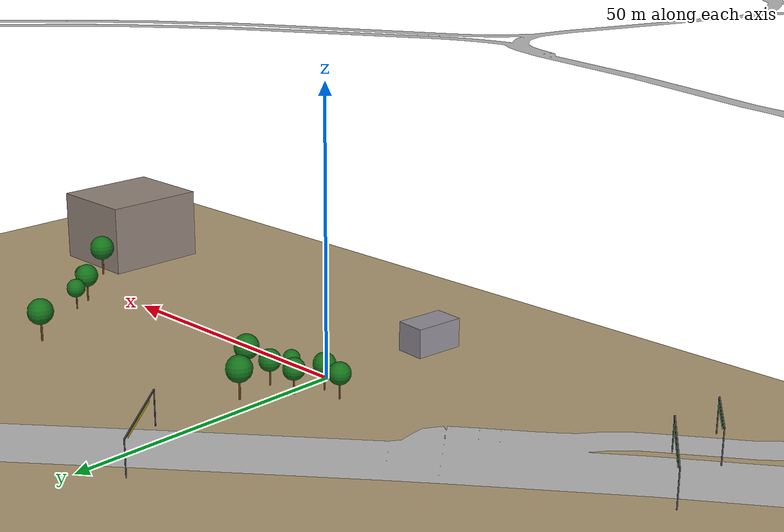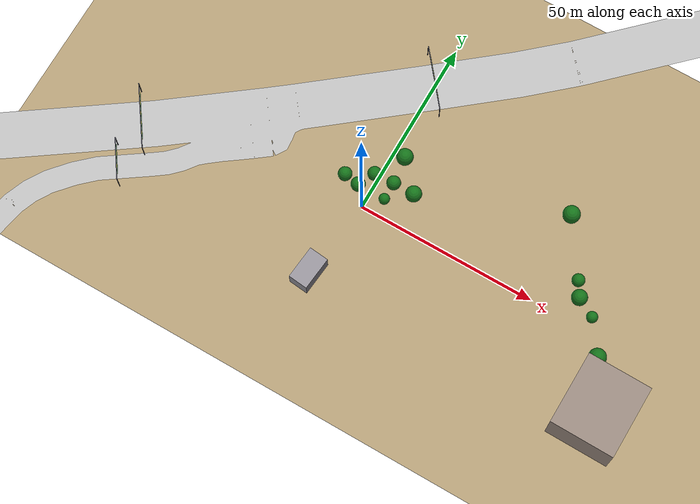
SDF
<sdf version="1.9">
 <world name="crossroad_world">
  <model name="ground_plane">
   <static>true</static>
   <pose>0 0 -0.05 0 0 0</pose>
   <link name="link">
    <collision name="collision">
     <geometry><plane><normal>0 0 1</normal><size>10000 10000</size></plane></geometry>
    </collision>
    <visual name="visual">
     <geometry><plane><normal>0 0 1</normal><size>15000 15000</size></plane></geometry>
     <material><ambient>0.68 0.60 0.45 1</ambient><diffuse>0.68 0.60 0.45 1</diffuse></material>
    </visual>
   </link>
  </model>
  <include><uri>model://crossroad_road</uri><pose>0 0 0.2 0 0 0</pose></include>
  <model name="gantry_33">
   <static>true</static>
   <pose>-60.702 -22.073 0 0 0 2.175</pose>
   <link name="link">
    <visual name="post_l">
     <pose>-5.700 0 2.925 0 0 0</pose>
     <geometry><cylinder><radius>0.1</radius><length>5.85</length></cylinder></geometry>
     <material><ambient>0.30 0.30 0.35 1</ambient><diffuse>0.30 0.30 0.35 1</diffuse></material>
    </visual>
    <visual name="post_r">
     <pose>5.700 0 2.925 0 0 0</pose>
     <geometry><cylinder><radius>0.1</radius><length>5.85</length></cylinder></geometry>
     <material><ambient>0.30 0.30 0.35 1</ambient><diffuse>0.30 0.30 0.35 1</diffuse></material>
    </visual>
    <visual name="beam">
     <pose>0 0 6.000 0 0 0</pose>
     <geometry><box><size>11.400 0.22 0.22</size></box></geometry>
     <material><ambient>0.30 0.30 0.35 1</ambient><diffuse>0.30 0.30 0.35 1</diffuse></material>
    </visual>
    <visual name="sign_border">
     <pose>0 -0.14 5.450 0 0 0</pose>
     <geometry><box><size>8.288 0.04 0.92</size></box></geometry>
     <material><ambient>0.90 0.85 0.10 1</ambient><diffuse>0.90 0.85 0.10 1</diffuse></material>
    </visual>
    <visual name="sign_panel">
     <pose>0 -0.15 5.450 0 0 0</pose>
     <geometry><box><size>8.208 0.05 0.86</size></box></geometry>
     <material><ambient>0.05 0.38 0.10 1</ambient><diffuse>0.05 0.38 0.10 1</diffuse></material>
    </visual>
    <collision name="col_post_l">
     <pose>-5.700 0 2.925 0 0 0</pose>
     <geometry><cylinder><radius>0.1</radius><length>5.85</length></cylinder></geometry>
    </collision>
    <collision name="col_post_r">
     <pose>5.700 0 2.925 0 0 0</pose>
     <geometry><cylinder><radius>0.1</radius><length>5.85</length></cylinder></geometry>
    </collision>
    <collision name="col_beam">
     <pose>0 0 6.000 0 0 0</pose>
     <geometry><box><size>11.400 0.22 0.22</size></box></geometry>
    </collision>
   </link>
  </model>
  <model name="gantry_67">
   <static>true</static>
   <pose>-61.518 -8.916 0 0 0 2.180</pose>
   <link name="link">
    <visual name="post_l">
     <pose>-8.900 0 2.925 0 0 0</pose>
     <geometry><cylinder><radius>0.1</radius><length>5.85</length></cylinder></geometry>
     <material><ambient>0.30 0.30 0.35 1</ambient><diffuse>0.30 0.30 0.35 1</diffuse></material>
    </visual>
    <visual name="post_r">
     <pose>8.900 0 2.925 0 0 0</pose>
     <geometry><cylinder><radius>0.1</radius><length>5.85</length></cylinder></geometry>
     <material><ambient>0.30 0.30 0.35 1</ambient><diffuse>0.30 0.30 0.35 1</diffuse></material>
    </visual>
    <visual name="beam">
     <pose>0 0 6.000 0 0 0</pose>
     <geometry><box><size>17.800 0.22 0.22</size></box></geometry>
     <material><ambient>0.30 0.30 0.35 1</ambient><diffuse>0.30 0.30 0.35 1</diffuse></material>
    </visual>
    <visual name="sign_border">
     <pose>0 -0.14 5.450 0 0 0</pose>
     <geometry><box><size>12.896 0.04 0.92</size></box></geometry>
     <material><ambient>0.90 0.85 0.10 1</ambient><diffuse>0.90 0.85 0.10 1</diffuse></material>
    </visual>
    <visual name="sign_panel">
     <pose>0 -0.15 5.450 0 0 0</pose>
     <geometry><box><size>12.816 0.05 0.86</size></box></geometry>
     <material><ambient>0.05 0.38 0.10 1</ambient><diffuse>0.05 0.38 0.10 1</diffuse></material>
    </visual>
    <collision name="col_post_l">
     <pose>-8.900 0 2.925 0 0 0</pose>
     <geometry><cylinder><radius>0.1</radius><length>5.85</length></cylinder></geometry>
    </collision>
    <collision name="col_post_r">
     <pose>8.900 0 2.925 0 0 0</pose>
     <geometry><cylinder><radius>0.1</radius><length>5.85</length></cylinder></geometry>
    </collision>
    <collision name="col_beam">
     <pose>0 0 6.000 0 0 0</pose>
     <geometry><box><size>17.800 0.22 0.22</size></box></geometry>
    </collision>
   </link>
  </model>
  <model name="gantry_69">
   <static>true</static>
   <pose>-0.530 38.634 0 0 0 2.255</pose>
   <link name="link">
    <visual name="post_l">
     <pose>-8.900 0 2.925 0 0 0</pose>
     <geometry><cylinder><radius>0.1</radius><length>5.85</length></cylinder></geometry>
     <material><ambient>0.30 0.30 0.35 1</ambient><diffuse>0.30 0.30 0.35 1</diffuse></material>
    </visual>
    <visual name="post_r">
     <pose>8.900 0 2.925 0 0 0</pose>
     <geometry><cylinder><radius>0.1</radius><length>5.85</length></cylinder></geometry>
     <material><ambient>0.30 0.30 0.35 1</ambient><diffuse>0.30 0.30 0.35 1</diffuse></material>
    </visual>
    <visual name="beam">
     <pose>0 0 6.000 0 0 0</pose>
     <geometry><box><size>17.800 0.22 0.22</size></box></geometry>
     <material><ambient>0.30 0.30 0.35 1</ambient><diffuse>0.30 0.30 0.35 1</diffuse></material>
    </visual>
    <visual name="sign_border">
     <pose>0 -0.14 5.450 0 0 0</pose>
     <geometry><box><size>12.896 0.04 0.92</size></box></geometry>
     <material><ambient>0.90 0.85 0.10 1</ambient><diffuse>0.90 0.85 0.10 1</diffuse></material>
    </visual>
    <visual name="sign_panel">
     <pose>0 -0.15 5.450 0 0 0</pose>
     <geometry><box><size>12.816 0.05 0.86</size></box></geometry>
     <material><ambient>0.05 0.38 0.10 1</ambient><diffuse>0.05 0.38 0.10 1</diffuse></material>
    </visual>
    <collision name="col_post_l">
     <pose>-8.900 0 2.925 0 0 0</pose>
     <geometry><cylinder><radius>0.1</radius><length>5.85</length></cylinder></geometry>
    </collision>
    <collision name="col_post_r">
     <pose>8.900 0 2.925 0 0 0</pose>
     <geometry><cylinder><radius>0.1</radius><length>5.85</length></cylinder></geometry>
    </collision>
    <collision name="col_beam">
     <pose>0 0 6.000 0 0 0</pose>
     <geometry><box><size>17.800 0.22 0.22</size></box></geometry>
    </collision>
   </link>
  </model>
  <model name="tree_173">
   <static>true</static>
   <pose>48.376 23.791 0 0 0 0</pose>
   <link name="link">
    <visual name="trunk">
     <pose>0 0 1.988 0 0 0</pose>
     <geometry><cylinder><radius>0.174</radius><length>3.975</length></cylinder></geometry>
     <material><ambient>0.38 0.22 0.08 1</ambient><diffuse>0.38 0.22 0.08 1</diffuse></material>
    </visual>
    <visual name="canopy">
     <pose>0 0 5.510 0 0 0</pose>
     <geometry><sphere><radius>2.360</radius></sphere></geometry>
     <material><ambient>0.08 0.44 0.10 1</ambient><diffuse>0.08 0.44 0.10 1</diffuse></material>
    </visual>
    <collision name="col">
     <pose>0 0 1.988 0 0 0</pose>
     <geometry><cylinder><radius>0.174</radius><length>3.975</length></cylinder></geometry>
    </collision>
   </link>
  </model>
  <model name="tree_174">
   <static>true</static>
   <pose>60.498 5.546 0 0 0 0</pose>
   <link name="link">
    <visual name="trunk">
     <pose>0 0 1.819 0 0 0</pose>
     <geometry><cylinder><radius>0.159</radius><length>3.638</length></cylinder></geometry>
     <material><ambient>0.38 0.22 0.08 1</ambient><diffuse>0.38 0.22 0.08 1</diffuse></material>
    </visual>
    <visual name="canopy">
     <pose>0 0 5.042 0 0 0</pose>
     <geometry><sphere><radius>2.160</radius></sphere></geometry>
     <material><ambient>0.08 0.44 0.10 1</ambient><diffuse>0.08 0.44 0.10 1</diffuse></material>
    </visual>
    <collision name="col">
     <pose>0 0 1.819 0 0 0</pose>
     <geometry><cylinder><radius>0.159</radius><length>3.638</length></cylinder></geometry>
    </collision>
   </link>
  </model>
  <model name="tree_175">
   <static>true</static>
   <pose>58.107 9.685 0 0 0 0</pose>
   <link name="link">
    <visual name="trunk">
     <pose>0 0 1.474 0 0 0</pose>
     <geometry><cylinder><radius>0.129</radius><length>2.947</length></cylinder></geometry>
     <material><ambient>0.38 0.22 0.08 1</ambient><diffuse>0.38 0.22 0.08 1</diffuse></material>
    </visual>
    <visual name="canopy">
     <pose>0 0 4.085 0 0 0</pose>
     <geometry><sphere><radius>1.750</radius></sphere></geometry>
     <material><ambient>0.08 0.44 0.10 1</ambient><diffuse>0.08 0.44 0.10 1</diffuse></material>
    </visual>
    <collision name="col">
     <pose>0 0 1.474 0 0 0</pose>
     <geometry><cylinder><radius>0.129</radius><length>2.947</length></cylinder></geometry>
    </collision>
   </link>
  </model>
  <model name="tree_176">
   <static>true</static>
   <pose>65.644 3.011 0 0 0 0</pose>
   <link name="link">
    <visual name="trunk">
     <pose>0 0 1.303 0 0 0</pose>
     <geometry><cylinder><radius>0.114</radius><length>2.607</length></cylinder></geometry>
     <material><ambient>0.38 0.22 0.08 1</ambient><diffuse>0.38 0.22 0.08 1</diffuse></material>
    </visual>
    <visual name="canopy">
     <pose>0 0 3.613 0 0 0</pose>
     <geometry><sphere><radius>1.548</radius></sphere></geometry>
     <material><ambient>0.08 0.44 0.10 1</ambient><diffuse>0.08 0.44 0.10 1</diffuse></material>
    </visual>
    <collision name="col">
     <pose>0 0 1.303 0 0 0</pose>
     <geometry><cylinder><radius>0.114</radius><length>2.607</length></cylinder></geometry>
    </collision>
   </link>
  </model>
  <model name="tree_177">
   <static>true</static>
   <pose>71.665 -5.979 0 0 0 0</pose>
   <link name="link">
    <visual name="trunk">
     <pose>0 0 2.006 0 0 0</pose>
     <geometry><cylinder><radius>0.176</radius><length>4.012</length></cylinder></geometry>
     <material><ambient>0.38 0.22 0.08 1</ambient><diffuse>0.38 0.22 0.08 1</diffuse></material>
    </visual>
    <visual name="canopy">
     <pose>0 0 5.561 0 0 0</pose>
     <geometry><sphere><radius>2.382</radius></sphere></geometry>
     <material><ambient>0.08 0.44 0.10 1</ambient><diffuse>0.08 0.44 0.10 1</diffuse></material>
    </visual>
    <collision name="col">
     <pose>0 0 2.006 0 0 0</pose>
     <geometry><cylinder><radius>0.176</radius><length>4.012</length></cylinder></geometry>
    </collision>
   </link>
  </model>
  <model name="tree_178">
   <static>true</static>
   <pose>76.086 -17.790 0 0 0 0</pose>
   <link name="link">
    <visual name="trunk">
     <pose>0 0 1.460 0 0 0</pose>
     <geometry><cylinder><radius>0.128</radius><length>2.919</length></cylinder></geometry>
     <material><ambient>0.38 0.22 0.08 1</ambient><diffuse>0.38 0.22 0.08 1</diffuse></material>
    </visual>
    <visual name="canopy">
     <pose>0 0 4.046 0 0 0</pose>
     <geometry><sphere><radius>1.733</radius></sphere></geometry>
     <material><ambient>0.08 0.44 0.10 1</ambient><diffuse>0.08 0.44 0.10 1</diffuse></material>
    </visual>
    <collision name="col">
     <pose>0 0 1.460 0 0 0</pose>
     <geometry><cylinder><radius>0.128</radius><length>2.919</length></cylinder></geometry>
    </collision>
   </link>
  </model>
  <model name="tree_179">
   <static>true</static>
   <pose>77.018 -13.573 0 0 0 0</pose>
   <link name="link">
    <visual name="trunk">
     <pose>0 0 1.741 0 0 0</pose>
     <geometry><cylinder><radius>0.152</radius><length>3.482</length></cylinder></geometry>
     <material><ambient>0.38 0.22 0.08 1</ambient><diffuse>0.38 0.22 0.08 1</diffuse></material>
    </visual>
    <visual name="canopy">
     <pose>0 0 4.825 0 0 0</pose>
     <geometry><sphere><radius>2.067</radius></sphere></geometry>
     <material><ambient>0.08 0.44 0.10 1</ambient><diffuse>0.08 0.44 0.10 1</diffuse></material>
    </visual>
    <collision name="col">
     <pose>0 0 1.741 0 0 0</pose>
     <geometry><cylinder><radius>0.152</radius><length>3.482</length></cylinder></geometry>
    </collision>
   </link>
  </model>
  <model name="tree_181">
   <static>true</static>
   <pose>81.374 -18.942 0 0 0 0</pose>
   <link name="link">
    <visual name="trunk">
     <pose>0 0 1.318 0 0 0</pose>
     <geometry><cylinder><radius>0.115</radius><length>2.635</length></cylinder></geometry>
     <material><ambient>0.38 0.22 0.08 1</ambient><diffuse>0.38 0.22 0.08 1</diffuse></material>
    </visual>
    <visual name="canopy">
     <pose>0 0 3.652 0 0 0</pose>
     <geometry><sphere><radius>1.565</radius></sphere></geometry>
     <material><ambient>0.08 0.44 0.10 1</ambient><diffuse>0.08 0.44 0.10 1</diffuse></material>
    </visual>
    <collision name="col">
     <pose>0 0 1.318 0 0 0</pose>
     <geometry><cylinder><radius>0.115</radius><length>2.635</length></cylinder></geometry>
    </collision>
   </link>
  </model>
  <model name="tree_182">
   <static>true</static>
   <pose>-7.602 4.443 0 0 0 0</pose>
   <link name="link">
    <visual name="trunk">
     <pose>0 0 1.599 0 0 0</pose>
     <geometry><cylinder><radius>0.140</radius><length>3.198</length></cylinder></geometry>
     <material><ambient>0.38 0.22 0.08 1</ambient><diffuse>0.38 0.22 0.08 1</diffuse></material>
    </visual>
    <visual name="canopy">
     <pose>0 0 4.432 0 0 0</pose>
     <geometry><sphere><radius>1.899</radius></sphere></geometry>
     <material><ambient>0.08 0.44 0.10 1</ambient><diffuse>0.08 0.44 0.10 1</diffuse></material>
    </visual>
    <collision name="col">
     <pose>0 0 1.599 0 0 0</pose>
     <geometry><cylinder><radius>0.140</radius><length>3.198</length></cylinder></geometry>
    </collision>
   </link>
  </model>
  <model name="tree_183">
   <static>true</static>
   <pose>-3.242 3.660 0 0 0 0</pose>
   <link name="link">
    <visual name="trunk">
     <pose>0 0 1.652 0 0 0</pose>
     <geometry><cylinder><radius>0.145</radius><length>3.303</length></cylinder></geometry>
     <material><ambient>0.38 0.22 0.08 1</ambient><diffuse>0.38 0.22 0.08 1</diffuse></material>
    </visual>
    <visual name="canopy">
     <pose>0 0 4.578 0 0 0</pose>
     <geometry><sphere><radius>1.961</radius></sphere></geometry>
     <material><ambient>0.08 0.44 0.10 1</ambient><diffuse>0.08 0.44 0.10 1</diffuse></material>
    </visual>
    <collision name="col">
     <pose>0 0 1.652 0 0 0</pose>
     <geometry><cylinder><radius>0.145</radius><length>3.303</length></cylinder></geometry>
    </collision>
   </link>
  </model>
  <model name="tree_184">
   <static>true</static>
   <pose>-1.003 8.333 0 0 0 0</pose>
   <link name="link">
    <visual name="trunk">
     <pose>0 0 1.602 0 0 0</pose>
     <geometry><cylinder><radius>0.140</radius><length>3.204</length></cylinder></geometry>
     <material><ambient>0.38 0.22 0.08 1</ambient><diffuse>0.38 0.22 0.08 1</diffuse></material>
    </visual>
    <visual name="canopy">
     <pose>0 0 4.440 0 0 0</pose>
     <geometry><sphere><radius>1.902</radius></sphere></geometry>
     <material><ambient>0.08 0.44 0.10 1</ambient><diffuse>0.08 0.44 0.10 1</diffuse></material>
    </visual>
    <collision name="col">
     <pose>0 0 1.602 0 0 0</pose>
     <geometry><cylinder><radius>0.140</radius><length>3.204</length></cylinder></geometry>
    </collision>
   </link>
  </model>
  <model name="tree_185">
   <static>true</static>
   <pose>4.435 3.872 0 0 0 0</pose>
   <link name="link">
    <visual name="trunk">
     <pose>0 0 1.251 0 0 0</pose>
     <geometry><cylinder><radius>0.109</radius><length>2.502</length></cylinder></geometry>
     <material><ambient>0.38 0.22 0.08 1</ambient><diffuse>0.38 0.22 0.08 1</diffuse></material>
    </visual>
    <visual name="canopy">
     <pose>0 0 3.467 0 0 0</pose>
     <geometry><sphere><radius>1.485</radius></sphere></geometry>
     <material><ambient>0.08 0.44 0.10 1</ambient><diffuse>0.08 0.44 0.10 1</diffuse></material>
    </visual>
    <collision name="col">
     <pose>0 0 1.251 0 0 0</pose>
     <geometry><cylinder><radius>0.109</radius><length>2.502</length></cylinder></geometry>
    </collision>
   </link>
  </model>
  <model name="tree_186">
   <static>true</static>
   <pose>4.525 8.592 0 0 0 0</pose>
   <link name="link">
    <visual name="trunk">
     <pose>0 0 1.607 0 0 0</pose>
     <geometry><cylinder><radius>0.141</radius><length>3.214</length></cylinder></geometry>
     <material><ambient>0.38 0.22 0.08 1</ambient><diffuse>0.38 0.22 0.08 1</diffuse></material>
    </visual>
    <visual name="canopy">
     <pose>0 0 4.454 0 0 0</pose>
     <geometry><sphere><radius>1.908</radius></sphere></geometry>
     <material><ambient>0.08 0.44 0.10 1</ambient><diffuse>0.08 0.44 0.10 1</diffuse></material>
    </visual>
    <collision name="col">
     <pose>0 0 1.607 0 0 0</pose>
     <geometry><cylinder><radius>0.141</radius><length>3.214</length></cylinder></geometry>
    </collision>
   </link>
  </model>
  <model name="tree_187">
   <static>true</static>
   <pose>3.644 15.925 0 0 0 0</pose>
   <link name="link">
    <visual name="trunk">
     <pose>0 0 1.910 0 0 0</pose>
     <geometry><cylinder><radius>0.167</radius><length>3.820</length></cylinder></geometry>
     <material><ambient>0.38 0.22 0.08 1</ambient><diffuse>0.38 0.22 0.08 1</diffuse></material>
    </visual>
    <visual name="canopy">
     <pose>0 0 5.295 0 0 0</pose>
     <geometry><sphere><radius>2.268</radius></sphere></geometry>
     <material><ambient>0.08 0.44 0.10 1</ambient><diffuse>0.08 0.44 0.10 1</diffuse></material>
    </visual>
    <collision name="col">
     <pose>0 0 1.910 0 0 0</pose>
     <geometry><cylinder><radius>0.167</radius><length>3.820</length></cylinder></geometry>
    </collision>
   </link>
  </model>
  <model name="tree_188">
   <static>true</static>
   <pose>10.562 8.380 0 0 0 0</pose>
   <link name="link">
    <visual name="trunk">
     <pose>0 0 1.836 0 0 0</pose>
     <geometry><cylinder><radius>0.161</radius><length>3.673</length></cylinder></geometry>
     <material><ambient>0.38 0.22 0.08 1</ambient><diffuse>0.38 0.22 0.08 1</diffuse></material>
    </visual>
    <visual name="canopy">
     <pose>0 0 5.091 0 0 0</pose>
     <geometry><sphere><radius>2.181</radius></sphere></geometry>
     <material><ambient>0.08 0.44 0.10 1</ambient><diffuse>0.08 0.44 0.10 1</diffuse></material>
    </visual>
    <collision name="col">
     <pose>0 0 1.836 0 0 0</pose>
     <geometry><cylinder><radius>0.161</radius><length>3.673</length></cylinder></geometry>
    </collision>
   </link>
  </model>
  <model name="building_346">
   <static>true</static>
   <pose>-2.836 -22.246 2.647 0 0 -0.098</pose>
   <link name="link">
    <visual name="body">
     <geometry><box><size>5.41 9.22 5.29</size></box></geometry>
     <material><ambient>0.57 0.56 0.59 1</ambient><diffuse>0.57 0.56 0.59 1</diffuse></material>
    </visual>
    <collision name="col"><geometry><box><size>5.41 9.22 5.29</size></box></geometry></collision>
   </link>
  </model>
  <model name="building_356">
   <static>true</static>
   <pose>77.994 -18.049 6.824 0 0 -0.011</pose>
   <link name="link">
    <visual name="body">
     <geometry><box><size>17.47 19.85 13.65</size></box></geometry>
     <material><ambient>0.58 0.52 0.48 1</ambient><diffuse>0.58 0.52 0.48 1</diffuse></material>
    </visual>
    <collision name="col"><geometry><box><size>17.47 19.85 13.65</size></box></geometry></collision>
   </link>
  </model>
 </world>
</sdf>
